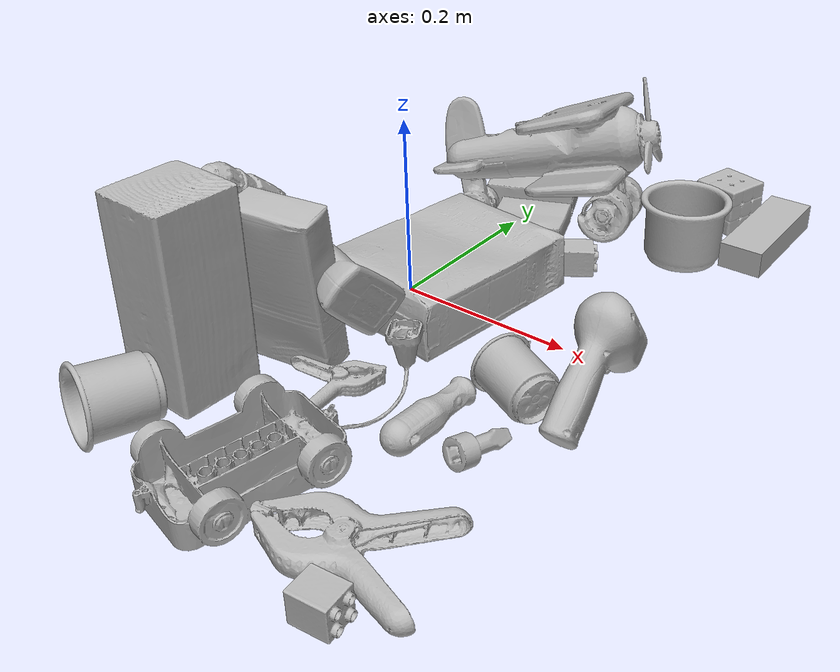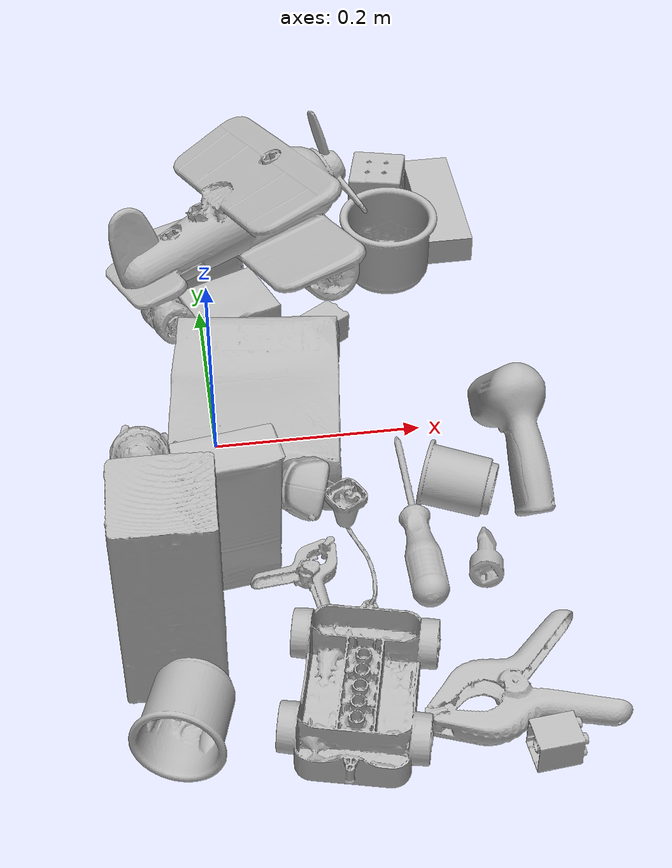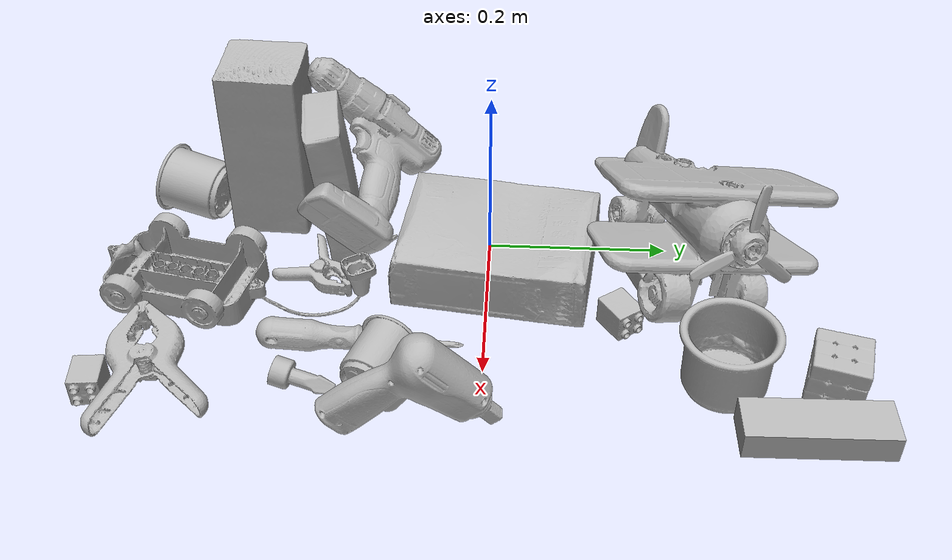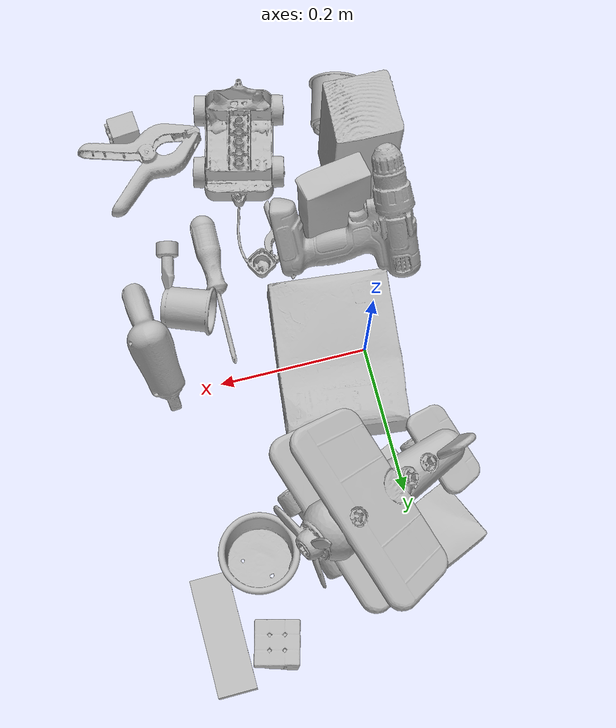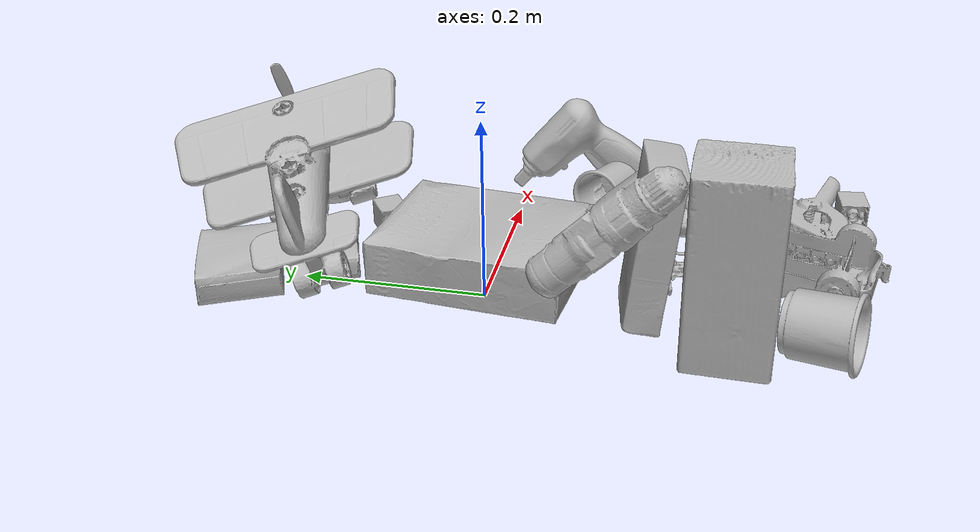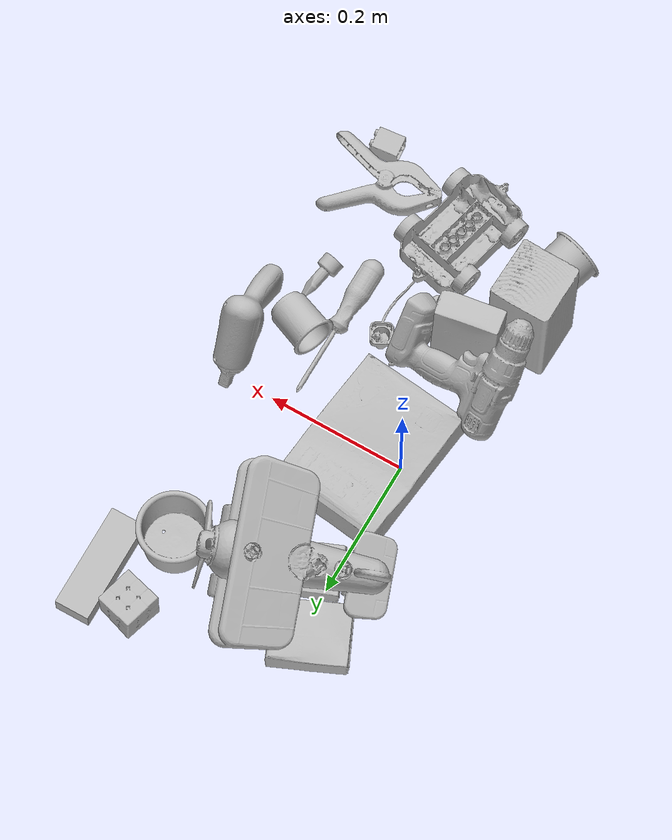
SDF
<sdf version="1.4">
  <world name="default">
    <light name="light1" type="point">
      <pose>0 0 1 0 0 0</pose>
      <diffuse>3 3 3 1</diffuse>
      <specular>3 3 3 1</specular>
    </light>
    <light name="light2" type="point">
      <pose>0 0.5 2 0 0 0</pose>
      <diffuse>1 1 1 1</diffuse>
      <specular>1 1 1 1</specular>
    </light>
    <light name="light3" type="point">
      <pose>0 0.5 2 0 0 0</pose>
      <diffuse>3 3 3 1</diffuse>
      <specular>3 3 3 1</specular>
    </light>
    <scene>
      <ambient>0.7 0.7 0.7</ambient>
    </scene>
    <model name="box21">
      <link name="link_box21">
        <collision name="default">
          <geometry>
            <mesh>
              <uri>model://cracker_box/collision_meshes/collision.obj</uri>
              <scale>1.0 1.0 1.0</scale>
            </mesh>
          </geometry>
          <surface>
            <friction>
              <ode>
                <mu>0.5</mu>
                <mu2>0.5</mu2>
              </ode>
            </friction>
          <contact>
        <ode>
            <max_vel>0</max_vel>
            <min_depth>0.0001</min_depth>
            <kp>1e8</kp>
        </ode>
    </contact></surface>
        </collision>
        <visual name="default">
          <geometry>
            <mesh>
              <uri>model://cracker_box/visual_meshes/visual.dae</uri>
              <scale>1.0 1.0 1.0</scale>
            </mesh>
          </geometry>
        </visual>
        <inertial>
          <mass>2.2869980335235596</mass>
          <pose>0.0009464151225984097 0.0002543425071053207 -0.0017029535956680775 -0.0003162075418873318 -0.011106487737663914 0.0025467956997025456</pose>
          <inertia>
            <ixx>0.005817102</ixx>
            <iyy>0.009605178</iyy>
            <izz>0.013707472</izz>
            <ixy>0</ixy>
            <ixz>0</ixz>
            <iyz>0</iyz>
          </inertia>
        </inertial>
      </link>
      <pose>0.041832875460386276 0.009560623206198215 0.03647378832101822 -0.006765570610585112 -0.002419175369453364 -1.691896576386027</pose>
    </model>
    <model name="box22">
      <link name="link_box22">
        <collision name="default">
          <geometry>
            <mesh>
              <uri>model://pudding_box/collision_meshes/collision.obj</uri>
              <scale>1.0 1.0 1.0</scale>
            </mesh>
          </geometry>
          <surface>
            <friction>
              <ode>
                <mu>0.5</mu>
                <mu2>0.5</mu2>
              </ode>
            </friction>
          <contact>
        <ode>
            <max_vel>0</max_vel>
            <min_depth>0.0001</min_depth>
            <kp>1e8</kp>
        </ode>
    </contact></surface>
        </collision>
        <visual name="default">
          <geometry>
            <mesh>
              <uri>model://pudding_box/visual_meshes/visual.dae</uri>
              <scale>1.0 1.0 1.0</scale>
            </mesh>
          </geometry>
        </visual>
        <inertial>
          <mass>0.5370154976844788</mass>
          <pose>0.0004894821904599667 0.0008067885646596551 -0.0005188827635720372 0.005213101796859606 -0.006603800100757192 0.02007981956729938</pose>
          <inertia>
            <ixx>0.0006070684</ixx>
            <iyy>0.00040843996</iyy>
            <izz>0.00089649507</izz>
            <ixy>0</ixy>
            <ixz>0</ixz>
            <iyz>0</iyz>
          </inertia>
        </inertial>
      </link>
      <pose>-0.015941936522722244 0.2683641016483307 0.018685903400182724 -3.141578537441775 -9.710393579241641e-05 1.994578320265585</pose>
    </model>
    <model name="box23">
      <link name="link_box23">
        <collision name="default">
          <geometry>
            <mesh>
              <uri>model://jenga/collision_meshes/collision.obj</uri>
              <scale>1.0 1.0 1.0</scale>
            </mesh>
          </geometry>
          <surface>
            <friction>
              <ode>
                <mu>0.5</mu>
                <mu2>0.5</mu2>
              </ode>
            </friction>
          <contact>
        <ode>
            <max_vel>0</max_vel>
            <min_depth>0.0001</min_depth>
            <kp>1e8</kp>
        </ode>
    </contact></surface>
        </collision>
        <visual name="default">
          <geometry>
            <mesh>
              <uri>model://jenga/visual_meshes/visual.dae</uri>
              <scale>1.0 1.0 1.0</scale>
            </mesh>
          </geometry>
        </visual>
        <inertial>
          <mass>0.17325031757354736</mass>
          <pose>-2.502855807051674e-07 -0.0001025000965455547 -4.0923401684267446e-05 0.0 -7.34215461761844e-07 0.0</pose>
          <inertia>
            <ixx>4.7942573e-05</ixx>
            <iyy>0.00032485754</iyy>
            <izz>0.00034681303</izz>
            <ixy>0</ixy>
            <ixz>0</ixz>
            <iyz>0</iyz>
          </inertia>
        </inertial>
      </link>
      <pose>0.27442046999931335 0.32547226548194885 0.015000025741755962 3.1415902983624955 -2.0911182082695518e-07 1.5838583689301553</pose>
    </model>
    <model name="cup1">
      <link name="link_cup1">
        <collision name="default">
          <geometry>
            <mesh>
              <uri>model://c_cups/collision_meshes/collision.obj</uri>
              <scale>1.0 1.0 1.0</scale>
            </mesh>
          </geometry>
          <surface>
            <friction>
              <ode>
                <mu>0.5</mu>
                <mu2>0.5</mu2>
              </ode>
            </friction>
          <contact>
        <ode>
            <max_vel>0</max_vel>
            <min_depth>0.0001</min_depth>
            <kp>1e8</kp>
        </ode>
    </contact></surface>
        </collision>
        <visual name="default">
          <geometry>
            <mesh>
              <uri>model://c_cups/visual_meshes/visual.dae</uri>
              <scale>1.0 1.0 1.0</scale>
            </mesh>
          </geometry>
        </visual>
        <inertial>
          <mass>0.033937059342861176</mass>
          <pose>0.0007237257086671889 0.002015391131862998 -0.0012750985333696008 0.3021568203324006 0.0134615240317058 -0.08771816491093205</pose>
          <inertia>
            <ixx>2.5238536e-05</ixx>
            <iyy>2.4792533e-05</iyy>
            <izz>2.2320162e-05</izz>
            <ixy>0</ixy>
            <ixz>0</ixz>
            <iyz>0</iyz>
          </inertia>
        </inertial>
      </link>
      <pose>0.21852754056453705 -0.10513132065534592 0.030077463015913963 -1.4817699189016327 0.47195812922435815 1.2268385473061807</pose>
    </model>
    <model name="cup2">
      <link name="link_cup2">
        <collision name="default">
          <geometry>
            <mesh>
              <uri>model://f_cups/collision_meshes/collision.obj</uri>
              <scale>1.0 1.0 1.0</scale>
            </mesh>
          </geometry>
          <surface>
            <friction>
              <ode>
                <mu>0.5</mu>
                <mu2>0.5</mu2>
              </ode>
            </friction>
          <contact>
        <ode>
            <max_vel>0</max_vel>
            <min_depth>0.0001</min_depth>
            <kp>1e8</kp>
        </ode>
    </contact></surface>
        </collision>
        <visual name="default">
          <geometry>
            <mesh>
              <uri>model://f_cups/visual_meshes/visual.dae</uri>
              <scale>1.0 1.0 1.0</scale>
            </mesh>
          </geometry>
        </visual>
        <inertial>
          <mass>0.10278050601482391</mass>
          <pose>-0.003171466989442706 -0.0006240068469196558 -0.003655537962913513 0.7862283183637603 -0.2607933822369466 -0.1823733550036739</pose>
          <inertia>
            <ixx>9.661645e-05</ixx>
            <iyy>0.00010135175</iyy>
            <izz>0.000105510015</izz>
            <ixy>0</ixy>
            <ixz>0</ixz>
            <iyz>0</iyz>
          </inertia>
        </inertial>
      </link>
      <pose>-0.05075865238904953 -0.34322866797447205 0.037213847041130066 1.475661343451635 0.22075880217161237 -0.3209892421703793</pose>
    </model>
    <model name="box11">
      <link name="link_box11">
        <collision name="default">
          <geometry>
            <mesh>
              <uri>model://wood_block/collision_meshes/collision.obj</uri>
              <scale>1.0 1.0 1.0</scale>
            </mesh>
          </geometry>
          <surface>
            <friction>
              <ode>
                <mu>0.5</mu>
                <mu2>0.5</mu2>
              </ode>
            </friction>
          <contact>
        <ode>
            <max_vel>0</max_vel>
            <min_depth>0.0001</min_depth>
            <kp>1e8</kp>
        </ode>
    </contact></surface>
        </collision>
        <visual name="default">
          <geometry>
            <mesh>
              <uri>model://wood_block/visual_meshes/visual.dae</uri>
              <scale>1.0 1.0 1.0</scale>
            </mesh>
          </geometry>
        </visual>
        <inertial>
          <mass>2.321592330932617</mass>
          <pose>-5.813315056002466e-06 -0.000570809468626976 0.0002640858292579651 -0.052209755297172346 -0.005192694580027673 -0.006861376555374886</pose>
          <inertia>
            <ixx>0.0031066423</ixx>
            <iyy>0.009813884</iyy>
            <izz>0.009777175</izz>
            <ixy>0</ixy>
            <ixz>0</ixz>
            <iyz>0</iyz>
          </inertia>
        </inertial>
      </link>
      <pose>-0.05488279461860657 -0.2540392279624939 0.10359013080596924 0.29720314693327976 -1.5707819253562514 -1.8962302417489083</pose>
    </model>
    <model name="box12">
      <link name="link_box12">
        <collision name="default">
          <geometry>
            <mesh>
              <uri>model://gelatin_box/collision_meshes/collision.obj</uri>
              <scale>1.0 1.0 1.0</scale>
            </mesh>
          </geometry>
          <surface>
            <friction>
              <ode>
                <mu>0.5</mu>
                <mu2>0.5</mu2>
              </ode>
            </friction>
          <contact>
        <ode>
            <max_vel>0</max_vel>
            <min_depth>0.0001</min_depth>
            <kp>1e8</kp>
        </ode>
    </contact></surface>
        </collision>
        <visual name="default">
          <geometry>
            <mesh>
              <uri>model://gelatin_box/visual_meshes/visual.dae</uri>
              <scale>1.0 1.0 1.0</scale>
            </mesh>
          </geometry>
        </visual>
        <inertial>
          <mass>0.2263340801000595</mass>
          <pose>0.0004319618456065655 0.00011156871914863586 -0.00036403207923285663 -0.001050371981036731 -0.004755818689382226 0.016440561334450605</pose>
          <inertia>
            <ixx>0.00015977336</ixx>
            <iyy>0.00011412529</iyy>
            <izz>0.00024321067</izz>
            <ixy>0</ixy>
            <ixz>0</ixz>
            <iyz>0</iyz>
          </inertia>
        </inertial>
      </link>
      <pose>0.03063517063856125 0.1884370893239975 0.015168317593634129 0.005597089441020232 -0.007304255772021518 -1.2029082634858972</pose>
    </model>
    <model name="box13">
      <link name="link_box13">
        <collision name="default">
          <geometry>
            <mesh>
              <uri>model://sugar_box/collision_meshes/collision.obj</uri>
              <scale>1.0 1.0 1.0</scale>
            </mesh>
          </geometry>
          <surface>
            <friction>
              <ode>
                <mu>0.5</mu>
                <mu2>0.5</mu2>
              </ode>
            </friction>
          <contact>
        <ode>
            <max_vel>0</max_vel>
            <min_depth>0.0001</min_depth>
            <kp>1e8</kp>
        </ode>
    </contact></surface>
        </collision>
        <visual name="default">
          <geometry>
            <mesh>
              <uri>model://sugar_box/visual_meshes/visual.dae</uri>
              <scale>1.0 1.0 1.0</scale>
            </mesh>
          </geometry>
        </visual>
        <inertial>
          <mass>0.4976349174976349</mass>
          <pose>0.0010343727190047503 3.849109634757042e-05 -0.00036364805418998003 -0.0004046263004245651 0.001050663405794887 0.002615379021776999</pose>
          <inertia>
            <ixx>0.0004146281</ixx>
            <iyy>0.0013401629</iyy>
            <izz>0.0016043353</izz>
            <ixy>0</ixy>
            <ixz>0</ixz>
            <iyz>0</iyz>
          </inertia>
        </inertial>
      </link>
      <pose>-0.0007114422623999417 -0.17261604964733124 0.08944301307201385 -0.008639183170239142 -1.462221702542453 -1.409051777192226</pose>
    </model>
    <model name="box14">
      <link name="link_box14">
        <collision name="default">
          <geometry>
            <mesh>
              <uri>model://rubiks_cube/collision_meshes/collision.obj</uri>
              <scale>1.0 1.0 1.0</scale>
            </mesh>
          </geometry>
          <surface>
            <friction>
              <ode>
                <mu>0.5</mu>
                <mu2>0.5</mu2>
              </ode>
            </friction>
          <contact>
        <ode>
            <max_vel>0</max_vel>
            <min_depth>0.0001</min_depth>
            <kp>1e8</kp>
        </ode>
    </contact></surface>
        </collision>
        <visual name="default">
          <geometry>
            <mesh>
              <uri>model://rubiks_cube/visual_meshes/visual.dae</uri>
              <scale>1.0 1.0 1.0</scale>
            </mesh>
          </geometry>
        </visual>
        <inertial>
          <mass>0.2531126141548157</mass>
          <pose>2.6721041649580002e-05 5.2569666877388954e-05 -7.264316536748083e-06 -0.05467274129792389 -0.0981396008906979 -0.0344563195746163</pose>
          <inertia>
            <ixx>0.00013986173</ixx>
            <iyy>0.00013920949</iyy>
            <izz>0.00014102072</izz>
            <ixy>0</ixy>
            <ixz>0</ixz>
            <iyz>0</iyz>
          </inertia>
        </inertial>
      </link>
      <pose>0.21164251863956451 0.3544681966304779 0.02905970625579357 -3.1341395716342157 0.010892164390323138 2.8513470456976955</pose>
    </model>
    <model name="cup15">
      <link name="link_cup15">
        <collision name="default">
          <geometry>
            <mesh>
              <uri>model://j_cups/collision_meshes/collision.obj</uri>
              <scale>1.0 1.0 1.0</scale>
            </mesh>
          </geometry>
          <surface>
            <friction>
              <ode>
                <mu>0.5</mu>
                <mu2>0.5</mu2>
              </ode>
            </friction>
          <contact>
        <ode>
            <max_vel>0</max_vel>
            <min_depth>0.0001</min_depth>
            <kp>1e8</kp>
        </ode>
    </contact></surface>
        </collision>
        <visual name="default">
          <geometry>
            <mesh>
              <uri>model://j_cups/visual_meshes/visual.dae</uri>
              <scale>1.0 1.0 1.0</scale>
            </mesh>
          </geometry>
        </visual>
        <inertial>
          <mass>0.12765173614025116</mass>
          <pose>0.0006164864171296358 0.0005398980574682355 -0.0013479006011039019 0.030303852295551513 0.03757989298695449 0.4386938541947324</pose>
          <inertia>
            <ixx>0.00018743309</ixx>
            <iyy>0.00018938213</iyy>
            <izz>0.0002160715</izz>
            <ixy>0</ixy>
            <ixz>0</ixz>
            <iyz>0</iyz>
          </inertia>
        </inertial>
      </link>
      <pose>0.2065591663122177 0.24435801804065704 0.03798907622694969 1.308959345140881e-06 -8.854957603394297e-07 2.6218808888827096</pose>
    </model>
    <model name="toy1">
      <link name="link_toy1">
        <collision name="default">
          <geometry>
            <mesh>
              <uri>model://f_lego_duplo/collision_meshes/collision.obj</uri>
              <scale>1.0 1.0 1.0</scale>
            </mesh>
          </geometry>
          <surface>
            <friction>
              <ode>
                <mu>0.5</mu>
                <mu2>0.5</mu2>
              </ode>
            </friction>
          <contact>
        <ode>
            <max_vel>0</max_vel>
            <min_depth>0.0001</min_depth>
            <kp>1e8</kp>
        </ode>
    </contact></surface>
        </collision>
        <visual name="default">
          <geometry>
            <mesh>
              <uri>model://f_lego_duplo/visual_meshes/visual.dae</uri>
              <scale>1.0 1.0 1.0</scale>
            </mesh>
          </geometry>
        </visual>
        <inertial>
          <mass>0.04013235494494438</mass>
          <pose>2.369376306887716e-05 0.00013393163681030273 0.0018837876850739121 0.029838734112773806 -0.014424842824784668 -0.6756708500035773</pose>
          <inertia>
            <ixx>8.480189e-06</ixx>
            <iyy>8.555736e-06</iyy>
            <izz>7.361164e-06</izz>
            <ixy>0</ixy>
            <ixz>0</ixz>
            <iyz>0</iyz>
          </inertia>
        </inertial>
      </link>
      <pose>0.12678304314613342 0.14405371248722076 0.016750700771808624 -1.5857620917630602 0.0034474074038165726 -0.9583744763933495</pose>
    </model>
    <model name="toy2">
      <link name="link_toy2">
        <collision name="default">
          <geometry>
            <mesh>
              <uri>model://e_toy_airplane/collision_meshes/collision.obj</uri>
              <scale>1.0 1.0 1.0</scale>
            </mesh>
          </geometry>
          <surface>
            <friction>
              <ode>
                <mu>0.5</mu>
                <mu2>0.5</mu2>
              </ode>
            </friction>
          <contact>
        <ode>
            <max_vel>0</max_vel>
            <min_depth>0.0001</min_depth>
            <kp>1e8</kp>
        </ode>
    </contact></surface>
        </collision>
        <visual name="default">
          <geometry>
            <mesh>
              <uri>model://e_toy_airplane/visual_meshes/visual.dae</uri>
              <scale>1.0 1.0 1.0</scale>
            </mesh>
          </geometry>
        </visual>
        <inertial>
          <mass>0.030105752870440483</mass>
          <pose>0.00011740480840671808 -2.248285454697907e-05 -0.011187204159796238 0.0055184715057391125 0.009228317867647443 0.150413097465581</pose>
          <inertia>
            <ixx>9.18862e-06</ixx>
            <iyy>9.094625e-06</iyy>
            <izz>2.761542e-06</izz>
            <ixy>0</ixy>
            <ixz>0</ixz>
            <iyz>0</iyz>
          </inertia>
        </inertial>
      </link>
      <pose>0.23138853907585144 -0.17867617309093475 0.01180163212120533 -1.8789591199414981 -0.9040303689730866 0.03605858191302791</pose>
    </model>
    <model name="toy3">
      <link name="link_toy3">
        <collision name="default">
          <geometry>
            <mesh>
              <uri>model://g_lego_duplo/collision_meshes/collision.obj</uri>
              <scale>1.0 1.0 1.0</scale>
            </mesh>
          </geometry>
          <surface>
            <friction>
              <ode>
                <mu>0.5</mu>
                <mu2>0.5</mu2>
              </ode>
            </friction>
          <contact>
        <ode>
            <max_vel>0</max_vel>
            <min_depth>0.0001</min_depth>
            <kp>1e8</kp>
        </ode>
    </contact></surface>
        </collision>
        <visual name="default">
          <geometry>
            <mesh>
              <uri>model://g_lego_duplo/visual_meshes/visual.dae</uri>
              <scale>1.0 1.0 1.0</scale>
            </mesh>
          </geometry>
        </visual>
        <inertial>
          <mass>0.4529305100440979</mass>
          <pose>-0.050047703087329865 0.0017554633086547256 0.0038806775119155645 0.010963008114131517 0.03810824387856379 -0.09653032518797504</pose>
          <inertia>
            <ixx>0.00065630145</ixx>
            <iyy>0.0019842102</iyy>
            <izz>0.0024823209</izz>
            <ixy>0</ixy>
            <ixz>0</ixz>
            <iyz>0</iyz>
          </inertia>
        </inertial>
      </link>
      <pose>0.10414890199899673 -0.26818734407424927 0.02762638032436371 -3.1408606349832104 -0.03036550557795699 1.335652179971684</pose>
    </model>
    <model name="toy4">
      <link name="link_toy4">
        <collision name="default">
          <geometry>
            <mesh>
              <uri>model://b_lego_duplo/collision_meshes/collision.obj</uri>
              <scale>1.0 1.0 1.0</scale>
            </mesh>
          </geometry>
          <surface>
            <friction>
              <ode>
                <mu>0.5</mu>
                <mu2>0.5</mu2>
              </ode>
            </friction>
          <contact>
        <ode>
            <max_vel>0</max_vel>
            <min_depth>0.0001</min_depth>
            <kp>1e8</kp>
        </ode>
    </contact></surface>
        </collision>
        <visual name="default">
          <geometry>
            <mesh>
              <uri>model://b_lego_duplo/visual_meshes/visual.dae</uri>
              <scale>1.0 1.0 1.0</scale>
            </mesh>
          </geometry>
        </visual>
        <inertial>
          <mass>0.018499748781323433</mass>
          <pose>-0.00011053003981942311 -9.15247255761642e-06 0.001929429592564702 -0.037494549291744686 -0.026354734626349716 0.4518828938821803</pose>
          <inertia>
            <ixx>3.786112e-06</ixx>
            <iyy>3.8115643e-06</iyy>
            <izz>3.3733036e-06</izz>
            <ixy>0</ixy>
            <ixz>0</ixz>
            <iyz>0</iyz>
          </inertia>
        </inertial>
      </link>
      <pose>0.2480623573064804 -0.3924393057823181 0.016180744394659996 0.04236589450945387 -1.5623858728773063 -3.0834262588744967</pose>
    </model>
    <model name="toy5">
      <link name="link_toy5">
        <collision name="default">
          <geometry>
            <mesh>
              <uri>model://b_toy_airplane/collision_meshes/collision.obj</uri>
              <scale>1.0 1.0 1.0</scale>
            </mesh>
          </geometry>
          <surface>
            <friction>
              <ode>
                <mu>0.5</mu>
                <mu2>0.5</mu2>
              </ode>
            </friction>
          <contact>
        <ode>
            <max_vel>0</max_vel>
            <min_depth>0.0001</min_depth>
            <kp>1e8</kp>
        </ode>
    </contact></surface>
        </collision>
        <visual name="default">
          <geometry>
            <mesh>
              <uri>model://b_toy_airplane/visual_meshes/visual.dae</uri>
              <scale>1.0 1.0 1.0</scale>
            </mesh>
          </geometry>
        </visual>
        <inertial>
          <mass>0.38904744386672974</mass>
          <pose>0.00508136348798871 0.004015582147985697 0.00954306498169899 -0.040018071915393034 -0.04022181905785318 -0.5601502897874057</pose>
          <inertia>
            <ixx>0.00072227366</ixx>
            <iyy>0.0002886998</iyy>
            <izz>0.0008985803</izz>
            <ixy>0</ixy>
            <ixz>0</ixz>
            <iyz>0</iyz>
          </inertia>
        </inertial>
      </link>
      <pose>0.2679753303527832 -0.06659401208162308 0.060400549322366714 1.73421946033996 0.8555348405398315 1.7846350030864897</pose>
    </model>
    <model name="toy6">
      <link name="link_toy6">
        <collision name="default">
          <geometry>
            <mesh>
              <uri>model://a_toy_airplane/collision_meshes/collision.obj</uri>
              <scale>1.0 1.0 1.0</scale>
            </mesh>
          </geometry>
          <surface>
            <friction>
              <ode>
                <mu>0.5</mu>
                <mu2>0.5</mu2>
              </ode>
            </friction>
          <contact>
        <ode>
            <max_vel>0</max_vel>
            <min_depth>0.0001</min_depth>
            <kp>1e8</kp>
        </ode>
    </contact></surface>
        </collision>
        <visual name="default">
          <geometry>
            <mesh>
              <uri>model://a_toy_airplane/visual_meshes/visual.dae</uri>
              <scale>1.0 1.0 1.0</scale>
            </mesh>
          </geometry>
        </visual>
        <inertial>
          <mass>2.344027519226074</mass>
          <pose>0.025165099650621414 -0.003707322059199214 -0.0011962436838075519 -0.012016950381748406 -0.14663507119063698 0.004149124939747771</pose>
          <inertia>
            <ixx>0.008512287</ixx>
            <iyy>0.012404123</iyy>
            <izz>0.014523712</izz>
            <ixy>0</ixy>
            <ixz>0</ixz>
            <iyz>0</iyz>
          </inertia>
        </inertial>
      </link>
      <pose>0.037376441061496735 0.21642270684242249 0.09990036487579346 -0.2606966697373806 -0.05426290239207853 0.35087945582135327</pose>
    </model>
    <model name="hardware1">
      <link name="link_hardware1">
        <collision name="default">
          <geometry>
            <mesh>
              <uri>model://power_drill/collision_meshes/collision.obj</uri>
              <scale>1.0 1.0 1.0</scale>
            </mesh>
          </geometry>
          <surface>
            <friction>
              <ode>
                <mu>0.5</mu>
                <mu2>0.5</mu2>
              </ode>
            </friction>
          <contact>
        <ode>
            <max_vel>0</max_vel>
            <min_depth>0.0001</min_depth>
            <kp>1e8</kp>
        </ode>
    </contact></surface>
        </collision>
        <visual name="default">
          <geometry>
            <mesh>
              <uri>model://power_drill/visual_meshes/visual.dae</uri>
              <scale>1.0 1.0 1.0</scale>
            </mesh>
          </geometry>
        </visual>
        <inertial>
          <mass>0.3504050374031067</mass>
          <pose>-0.014780547469854355 0.014369429089128971 0.0012414171360433102 0.0046091621872236125 0.004073022304059966 -0.18362696816981472</pose>
          <inertia>
            <ixx>0.001427917</ixx>
            <iyy>0.0005618108</iyy>
            <izz>0.0018858167</izz>
            <ixy>0</ixy>
            <ixz>0</ixz>
            <iyz>0</iyz>
          </inertia>
        </inertial>
      </link>
      <pose>-0.006063161417841911 -0.1464192271232605 0.11755359172821045 2.8424072907456734 -0.7663299516572261 -1.552822062140079</pose>
    </model>
    <model name="hardware2">
      <link name="link_hardware2">
        <collision name="default">
          <geometry>
            <mesh>
              <uri>model://phillips_screwdriver/collision_meshes/collision.obj</uri>
              <scale>1.0 1.0 1.0</scale>
            </mesh>
          </geometry>
          <surface>
            <friction>
              <ode>
                <mu>0.5</mu>
                <mu2>0.5</mu2>
              </ode>
            </friction>
          <contact>
        <ode>
            <max_vel>0</max_vel>
            <min_depth>0.0001</min_depth>
            <kp>1e8</kp>
        </ode>
    </contact></surface>
        </collision>
        <visual name="default">
          <geometry>
            <mesh>
              <uri>model://phillips_screwdriver/visual_meshes/visual.dae</uri>
              <scale>1.0 1.0 1.0</scale>
            </mesh>
          </geometry>
        </visual>
        <inertial>
          <mass>0.06613585352897644</mass>
          <pose>-0.04777182638645172 0.0010362302418798208 -0.000455554953077808 -0.157256923583716 0.005850995849984215 -0.0021567369270283215</pose>
          <inertia>
            <ixx>7.770284e-06</ixx>
            <iyy>9.742579e-05</iyy>
            <izz>9.7508564e-05</izz>
            <ixy>0</ixy>
            <ixz>0</ixz>
            <iyz>0</iyz>
          </inertia>
        </inertial>
      </link>
      <pose>0.17397603392601013 -0.13143742084503174 0.01581203192472458 -0.32932125033334314 0.03628595693842183 1.5653852319175843</pose>
    </model>
    <model name="hardware3">
      <link name="link_hardware3">
        <collision name="default">
          <geometry>
            <mesh>
              <uri>model://large_clamp/collision_meshes/collision.obj</uri>
              <scale>1.0 1.0 1.0</scale>
            </mesh>
          </geometry>
          <surface>
            <friction>
              <ode>
                <mu>0.5</mu>
                <mu2>0.5</mu2>
              </ode>
            </friction>
          <contact>
        <ode>
            <max_vel>0</max_vel>
            <min_depth>0.0001</min_depth>
            <kp>1e8</kp>
        </ode>
    </contact></surface>
        </collision>
        <visual name="default">
          <geometry>
            <mesh>
              <uri>model://large_clamp/visual_meshes/visual.dae</uri>
              <scale>1.0 1.0 1.0</scale>
            </mesh>
          </geometry>
        </visual>
        <inertial>
          <mass>0.0812491774559021</mass>
          <pose>0.00636935792863369 0.00035856812610290945 -0.0001839803153416142 -0.0021330695247891995 0.009671592144941876 0.026633191629386817</pose>
          <inertia>
            <ixx>7.1684015e-05</ixx>
            <iyy>0.00013613176</iyy>
            <izz>0.00019693196</izz>
            <ixy>0</ixy>
            <ixz>0</ixz>
            <iyz>0</iyz>
          </inertia>
        </inertial>
      </link>
      <pose>0.22249038517475128 -0.3407386541366577 0.01808071695268154 3.122926994555092 0.020418511961883212 -2.8651891085958163</pose>
    </model>
    <model name="hardware4">
      <link name="link_hardware4">
        <collision name="default">
          <geometry>
            <mesh>
              <uri>model://medium_clamp/collision_meshes/collision.obj</uri>
              <scale>1.0 1.0 1.0</scale>
            </mesh>
          </geometry>
          <surface>
            <friction>
              <ode>
                <mu>0.5</mu>
                <mu2>0.5</mu2>
              </ode>
            </friction>
          <contact>
        <ode>
            <max_vel>0</max_vel>
            <min_depth>0.0001</min_depth>
            <kp>1e8</kp>
        </ode>
    </contact></surface>
        </collision>
        <visual name="default">
          <geometry>
            <mesh>
              <uri>model://medium_clamp/visual_meshes/visual.dae</uri>
              <scale>1.0 1.0 1.0</scale>
            </mesh>
          </geometry>
        </visual>
        <inertial>
          <mass>0.04165364429354668</mass>
          <pose>0.0053909956477582455 0.00039532381924800575 -0.0001222159044118598 -0.0012269202016338824 0.0025845009837354585 0.038207769727488725</pose>
          <inertia>
            <ixx>1.134795e-05</ixx>
            <iyy>1.6514476e-05</iyy>
            <izz>2.5437248e-05</izz>
            <ixy>0</ixy>
            <ixz>0</ixz>
            <iyz>0</iyz>
          </inertia>
        </inertial>
      </link>
      <pose>0.06791333854198456 -0.1858588457107544 0.013533905148506165 0.07683725935515855 0.08546001716002166 0.9571198504060027</pose>
    </model>
  <physics type="ode">
      <max_contacts>50</max_contacts>
      <ode>
        <solver>
          <type>quick</type>
          <iters>75</iters>
        </solver>
        <constraints>
          <contact_max_correcting_vel>0</contact_max_correcting_vel>
          <contact_surface_layer>0</contact_surface_layer>
        </constraints>
      </ode>
    </physics></world>
</sdf>
